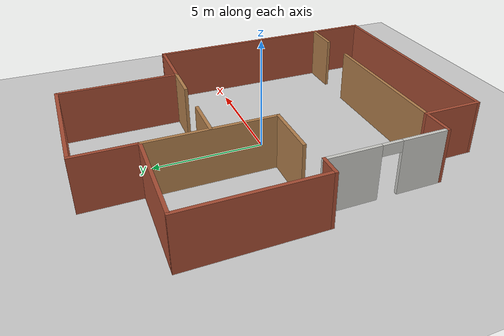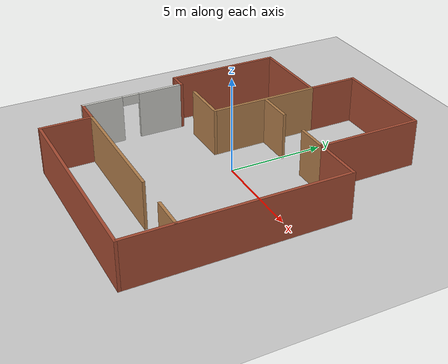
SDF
<sdf version="1.6">
 <world name="default">
  <light name="sun" type="directional">
   <pose>0 0 10 0 -0 0</pose>
   <diffuse>0.8 0.8 0.8 1</diffuse>
   <specular>0.1 0.1 0.1 1</specular>
   <attenuation>
    <range>1000</range>
    <constant>0.9</constant>
    <linear>0.01</linear>
    <quadratic>0.001</quadratic>
   </attenuation>
   <direction>-0.5 0.5 -1</direction>
  </light>
  <model name="ground_plane">
   <static>1</static>
   <link name="link">
    <collision name="collision">
     <geometry><plane><normal>0 0 1</normal><size>100 100</size></plane></geometry>
     <surface><friction><ode><mu>100</mu><mu2>50</mu2></ode></friction></surface>
    </collision>
    <visual name="visual">
     <cast_shadows>0</cast_shadows>
     <geometry><plane><normal>0 0 1</normal><size>100 100</size></plane></geometry>
     <material>
      <script><uri>file://media/materials/scripts/gazebo.material</uri><name>Gazebo/Grey</name></script>
     </material>
    </visual>
   </link>
  </model>
  <gravity>0 0 -9.8</gravity>
  <magnetic_field>6e-06 2.3e-05 -4.2e-05</magnetic_field>
  <atmosphere type="adiabatic"/>
  <physics name="default_physics" default="0" type="ode">
   <max_step_size>0.001</max_step_size>
   <real_time_factor>1</real_time_factor>
   <real_time_update_rate>1000</real_time_update_rate>
  </physics>
  <scene><ambient>0.4 0.4 0.4 1</ambient><background>0.7 0.7 0.7 1</background><shadows>1</shadows></scene>
  <spherical_coordinates>
   <surface_model>EARTH_WGS84</surface_model>
   <latitude_deg>0</latitude_deg>
   <longitude_deg>0</longitude_deg>
   <elevation>0</elevation>
   <heading_deg>0</heading_deg>
  </spherical_coordinates>
  <model name="simpleRepo">
   <pose>-0.02475 -0.034474 0 0 -0 0</pose>
   <link name="Wall_0">
    <pose>-5.3 -2.925 0 0 -0 1.5708</pose>
    <visual name="Wall_0_Visual_0">
     <pose>-1.68926 0 1.25 0 -0 0</pose>
     <geometry><box><size>2.17148 0.15 2.5</size></box></geometry>
     <material>
      <script><uri>file://media/materials/scripts/gazebo.material</uri><name>Gazebo/CeilingTiled</name></script>
      <ambient>1 1 1 1</ambient>
     </material>
    </visual>
    <collision name="Wall_0_Collision_0">
     <geometry><box><size>2.17148 0.15 2.5</size></box></geometry>
     <pose>-1.68926 0 1.25 0 -0 0</pose>
    </collision>
    <visual name="Wall_0_Visual_1">
     <pose>1.53574 0 1.25 0 -0 0</pose>
     <geometry><box><size>2.47852 0.15 2.5</size></box></geometry>
     <material>
      <script><uri>file://media/materials/scripts/gazebo.material</uri><name>Gazebo/CeilingTiled</name></script>
      <ambient>1 1 1 1</ambient>
     </material>
    </visual>
    <collision name="Wall_0_Collision_1">
     <geometry><box><size>2.47852 0.15 2.5</size></box></geometry>
     <pose>1.53574 0 1.25 0 -0 0</pose>
    </collision>
    <visual name="Wall_0_Visual_2">
     <pose>-0.153517 0 2.25 0 -0 0</pose>
     <geometry><box><size>0.9 0.15 0.5</size></box></geometry>
     <material>
      <script><uri>file://media/materials/scripts/gazebo.material</uri><name>Gazebo/CeilingTiled</name></script>
      <ambient>1 1 1 1</ambient>
     </material>
    </visual>
    <collision name="Wall_0_Collision_2">
     <geometry><box><size>0.9 0.15 0.5</size></box></geometry>
     <pose>-0.153517 0 2.25 0 -0 0</pose>
    </collision>
   </link>
   <link name="Wall_1">
    <collision name="Wall_1_Collision">
     <geometry><box><size>1 0.15 2.5</size></box></geometry>
     <pose>0 0 1.25 0 -0 0</pose>
    </collision>
    <visual name="Wall_1_Visual">
     <pose>0 0 1.25 0 -0 0</pose>
     <geometry><box><size>1 0.15 2.5</size></box></geometry>
     <material>
      <script><uri>file://media/materials/scripts/gazebo.material</uri><name>Gazebo/Bricks</name></script>
      <ambient>1 1 1 1</ambient>
     </material>
    </visual>
    <pose>-5.725 -0.225 0 0 -0 3.14159</pose>
   </link>
   <link name="Wall_10">
    <collision name="Wall_10_Collision">
     <geometry><box><size>2.75 0.15 2.5</size></box></geometry>
     <pose>0 0 1.25 0 -0 0</pose>
    </collision>
    <visual name="Wall_10_Visual">
     <pose>0 0 1.25 0 -0 0</pose>
     <geometry><box><size>2.75 0.15 2.5</size></box></geometry>
     <material>
      <script><uri>file://media/materials/scripts/gazebo.material</uri><name>Gazebo/Bricks</name></script>
      <ambient>1 1 1 1</ambient>
     </material>
    </visual>
    <pose>-3.95 -6.925 0 0 -0 1.5708</pose>
   </link>
   <link name="Wall_11">
    <collision name="Wall_11_Collision">
     <geometry><box><size>1.5 0.15 2.5</size></box></geometry>
     <pose>0 0 1.25 0 -0 0</pose>
    </collision>
    <visual name="Wall_11_Visual">
     <pose>0 0 1.25 0 -0 0</pose>
     <geometry><box><size>1.5 0.15 2.5</size></box></geometry>
     <material>
      <script><uri>file://media/materials/scripts/gazebo.material</uri><name>Gazebo/Bricks</name></script>
      <ambient>1 1 1 1</ambient>
     </material>
    </visual>
    <pose>-4.625 -5.625 0 0 -0 3.14159</pose>
   </link>
   <link name="Wall_13">
    <collision name="Wall_13_Collision">
     <geometry><box><size>5.75 0.15 2.5</size></box></geometry>
     <pose>0 0 1.25 0 -0 0</pose>
    </collision>
    <visual name="Wall_13_Visual">
     <pose>0 0 1.25 0 -0 0</pose>
     <geometry><box><size>5.75 0.15 2.5</size></box></geometry>
     <material>
      <script><uri>file://media/materials/scripts/gazebo.material</uri><name>Gazebo/Wood</name></script>
      <ambient>1 1 1 1</ambient>
     </material>
    </visual>
    <pose>-1.8 2.825 0 0 0 -1.5708</pose>
   </link>
   <link name="Wall_14">
    <collision name="Wall_14_Collision">
     <geometry><box><size>2.5 0.15 2.5</size></box></geometry>
     <pose>0 0 1.25 0 -0 0</pose>
    </collision>
    <visual name="Wall_14_Visual">
     <pose>0 0 1.25 0 -0 0</pose>
     <geometry><box><size>2.5 0.15 2.5</size></box></geometry>
     <material>
      <script><uri>file://media/materials/scripts/gazebo.material</uri><name>Gazebo/Wood</name></script>
      <ambient>1 1 1 1</ambient>
     </material>
    </visual>
    <pose>-2.975 0.025 0 0 -0 3.14159</pose>
   </link>
   <link name="Wall_16">
    <collision name="Wall_16_Collision">
     <geometry><box><size>1.75 0.15 2.5</size></box></geometry>
     <pose>0 0 1.25 0 -0 0</pose>
    </collision>
    <visual name="Wall_16_Visual">
     <pose>0 0 1.25 0 -0 0</pose>
     <geometry><box><size>1.75 0.15 2.5</size></box></geometry>
     <material>
      <script><uri>file://media/materials/scripts/gazebo.material</uri><name>Gazebo/Wood</name></script>
      <ambient>1 1 1 1</ambient>
     </material>
    </visual>
    <pose>2.75 2.875 0 0 -0 3.14159</pose>
   </link>
   <link name="Wall_18">
    <collision name="Wall_18_Collision">
     <geometry><box><size>2 0.15 2.5</size></box></geometry>
     <pose>0 0 1.25 0 -0 0</pose>
    </collision>
    <visual name="Wall_18_Visual">
     <pose>0 0 1.25 0 -0 0</pose>
     <geometry><box><size>2 0.15 2.5</size></box></geometry>
     <material>
      <script><uri>file://media/materials/scripts/gazebo.material</uri><name>Gazebo/Wood</name></script>
      <ambient>1 1 1 1</ambient>
     </material>
    </visual>
    <pose>-0.841842 2.88331 0 0 -0 0</pose>
   </link>
   <link name="Wall_2">
    <collision name="Wall_2_Collision">
     <geometry><box><size>6 0.15 2.5</size></box></geometry>
     <pose>0 0 1.25 0 -0 0</pose>
    </collision>
    <visual name="Wall_2_Visual">
     <pose>0 0 1.25 0 -0 0</pose>
     <geometry><box><size>6 0.15 2.5</size></box></geometry>
     <material>
      <script><uri>file://media/materials/scripts/gazebo.material</uri><name>Gazebo/Bricks</name></script>
      <ambient>1 1 1 1</ambient>
     </material>
    </visual>
    <pose>-6.15 2.7 0 0 -0 1.5708</pose>
   </link>
   <link name="Wall_20">
    <collision name="Wall_20_Collision">
     <geometry><box><size>6.75 0.15 2.5</size></box></geometry>
     <pose>0 0 1.25 0 -0 0</pose>
    </collision>
    <visual name="Wall_20_Visual">
     <pose>0 0 1.25 0 -0 0</pose>
     <geometry><box><size>6.75 0.15 2.5</size></box></geometry>
     <material>
      <script><uri>file://media/materials/scripts/gazebo.material</uri><name>Gazebo/Wood</name></script>
      <ambient>1 1 1 1</ambient>
     </material>
    </visual>
    <pose>-0.65 -5.625 0 0 -0 0</pose>
   </link>
   <link name="Wall_22">
    <collision name="Wall_22_Collision">
     <geometry><box><size>1.75 0.15 2.5</size></box></geometry>
     <pose>0 0 1.25 0 -0 0</pose>
    </collision>
    <visual name="Wall_22_Visual">
     <pose>0 0 1.25 0 -0 0</pose>
     <geometry><box><size>1.75 0.15 2.5</size></box></geometry>
     <material>
      <script><uri>file://media/materials/scripts/gazebo.material</uri><name>Gazebo/Wood</name></script>
      <ambient>1 1 1 1</ambient>
     </material>
    </visual>
    <pose>5.31944 -5.63359 0 0 -0 0</pose>
   </link>
   <link name="Wall_3">
    <collision name="Wall_3_Collision">
     <geometry><box><size>4.5 0.15 2.5</size></box></geometry>
     <pose>0 0 1.25 0 -0 0</pose>
    </collision>
    <visual name="Wall_3_Visual">
     <pose>0 0 1.25 0 -0 0</pose>
     <geometry><box><size>4.5 0.15 2.5</size></box></geometry>
     <material>
      <script><uri>file://media/materials/scripts/gazebo.material</uri><name>Gazebo/Bricks</name></script>
      <ambient>1 1 1 1</ambient>
     </material>
    </visual>
    <pose>-3.975 5.625 0 0 -0 0</pose>
   </link>
   <link name="Wall_4">
    <collision name="Wall_4_Collision">
     <geometry><box><size>2.75 0.15 2.5</size></box></geometry>
     <pose>0 0 1.25 0 -0 0</pose>
    </collision>
    <visual name="Wall_4_Visual">
     <pose>0 0 1.25 0 -0 0</pose>
     <geometry><box><size>2.75 0.15 2.5</size></box></geometry>
     <material>
      <script><uri>file://media/materials/scripts/gazebo.material</uri><name>Gazebo/Bricks</name></script>
      <ambient>1 1 1 1</ambient>
     </material>
    </visual>
    <pose>-1.8 6.925 0 0 -0 1.5708</pose>
   </link>
   <link name="Wall_5">
    <collision name="Wall_5_Collision">
     <geometry><box><size>5.5 0.15 2.5</size></box></geometry>
     <pose>0 0 1.25 0 -0 0</pose>
    </collision>
    <visual name="Wall_5_Visual">
     <pose>0 0 1.25 0 -0 0</pose>
     <geometry><box><size>5.5 0.15 2.5</size></box></geometry>
     <material>
      <script><uri>file://media/materials/scripts/gazebo.material</uri><name>Gazebo/Bricks</name></script>
      <ambient>1 1 1 1</ambient>
     </material>
    </visual>
    <pose>0.875 8.225 0 0 -0 0</pose>
   </link>
   <link name="Wall_6">
    <collision name="Wall_6_Collision">
     <geometry><box><size>5.5 0.15 2.5</size></box></geometry>
     <pose>0 0 1.25 0 -0 0</pose>
    </collision>
    <visual name="Wall_6_Visual">
     <pose>0 0 1.25 0 -0 0</pose>
     <geometry><box><size>5.5 0.15 2.5</size></box></geometry>
     <material>
      <script><uri>file://media/materials/scripts/gazebo.material</uri><name>Gazebo/Bricks</name></script>
      <ambient>1 1 1 1</ambient>
     </material>
    </visual>
    <pose>3.55 5.55 0 0 0 -1.5708</pose>
   </link>
   <link name="Wall_7">
    <collision name="Wall_7_Collision">
     <geometry><box><size>2.75 0.15 2.5</size></box></geometry>
     <pose>0 0 1.25 0 -0 0</pose>
    </collision>
    <visual name="Wall_7_Visual">
     <pose>0 0 1.25 0 -0 0</pose>
     <geometry><box><size>2.75 0.15 2.5</size></box></geometry>
     <material>
      <script><uri>file://media/materials/scripts/gazebo.material</uri><name>Gazebo/Bricks</name></script>
      <ambient>1 1 1 1</ambient>
     </material>
    </visual>
    <pose>4.85 2.875 0 0 -0 0</pose>
   </link>
   <link name="Wall_8">
    <collision name="Wall_8_Collision">
     <geometry><box><size>11.25 0.15 2.5</size></box></geometry>
     <pose>0 0 1.25 0 -0 0</pose>
    </collision>
    <visual name="Wall_8_Visual">
     <pose>0 0 1.25 0 -0 0</pose>
     <geometry><box><size>11.25 0.15 2.5</size></box></geometry>
     <material>
      <script><uri>file://media/materials/scripts/gazebo.material</uri><name>Gazebo/Bricks</name></script>
      <ambient>1 1 1 1</ambient>
     </material>
    </visual>
    <pose>6.15 -2.675 0 0 0 -1.5708</pose>
   </link>
   <link name="Wall_9">
    <collision name="Wall_9_Collision">
     <geometry><box><size>10.25 0.15 2.5</size></box></geometry>
     <pose>0 0 1.25 0 -0 0</pose>
    </collision>
    <visual name="Wall_9_Visual">
     <pose>0 0 1.25 0 -0 0</pose>
     <geometry><box><size>10.25 0.15 2.5</size></box></geometry>
     <material>
      <script><uri>file://media/materials/scripts/gazebo.material</uri><name>Gazebo/Bricks</name></script>
      <ambient>1 1 1 1</ambient>
     </material>
    </visual>
    <pose>1.1 -8.225 0 0 -0 3.14159</pose>
   </link>
   <static>1</static>
  </model>
 </world>
</sdf>
